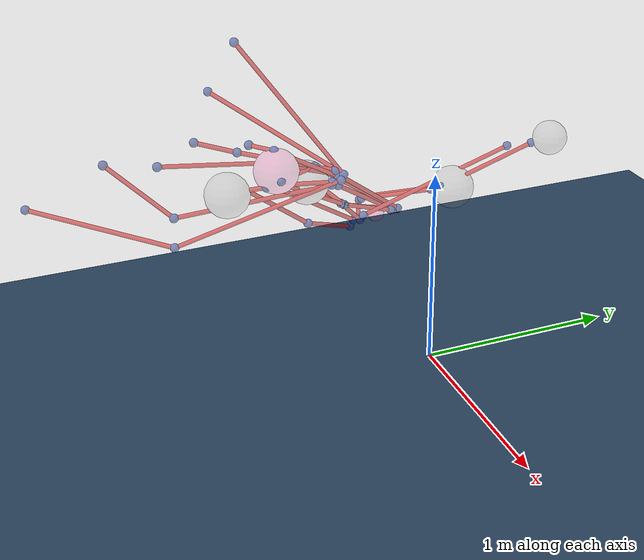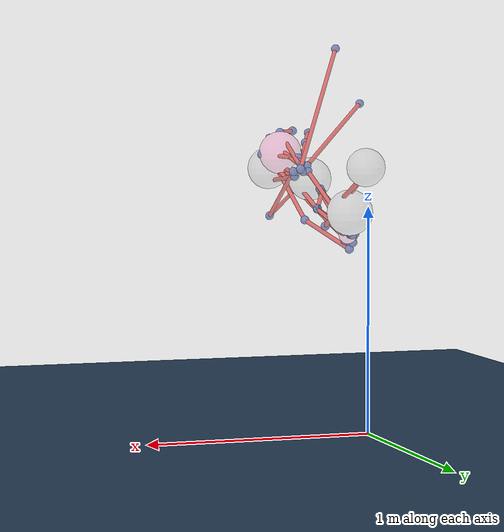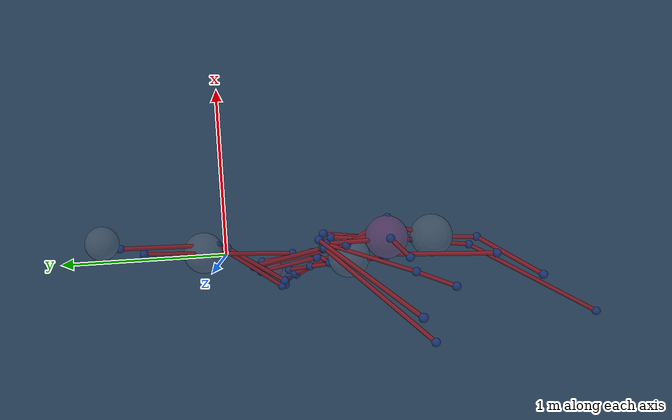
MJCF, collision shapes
<mujoco model="mouse">
  <compiler angle="radian">
    <lengthrange mode="muscle"/>
  </compiler>
  <default>
  <joint limited="true" damping="0.5" armature="0.5" stiffness="1"></joint>
  <site size="0.001"></site>
  <tendon width="0.005" rgba=".95 .3 .3 1" limited="false"></tendon>
  </default>
  <option timestep="0.002"/>
  <size njmax="1000" nconmax="400" nkey="1" nuser_jnt="1"/>
  <visual>
    <scale framelength="0.5" framewidth="0.01"/>
  </visual>
  <asset>
    <material name="target" rgba="0.59999999999999998 0.29999999999999999 0.29999999999999999 0.29999999999999999"/>
    <texture name="grid_texture" type="2d" builtin="checker" rgb1="0.10000000000000001 0.20000000000000001 0.29999999999999999" rgb2="0.20000000000000001 0.29999999999999999 0.40000000000000002" mark="edge" markrgb="0.20000000000000001 0.29999999999999999 0.40000000000000002" width="300" height="300"/>
    <material name="grid_material" texture="grid_texture" texrepeat="1 1" texuniform="true" reflectance="0.20000000000000001"/>
    <mesh file="/root/vast/eric/vnl-ray/vnl_ray/mouse_forelimb/assets_mousereach/mesh/Bones_Scapula.stl" scale="100 100 100"/>
		<mesh file="/root/vast/eric/vnl-ray/vnl_ray/mouse_forelimb/assets_mousereach/mesh/Bone_Segmentation_Humerus.stl" scale="100 100 100"/>
		<mesh file="/root/vast/eric/vnl-ray/vnl_ray/mouse_forelimb/assets_mousereach/mesh/Bone_Segmentation_Segment_8.stl" scale="100 100 100"/>
		<mesh file="/root/vast/eric/vnl-ray/vnl_ray/mouse_forelimb/assets_mousereach/mesh/Bone_Segments_Hand.stl" scale="100 100 100"/>
		<mesh file="/root/vast/eric/vnl-ray/vnl_ray/mouse_forelimb/assets_mousereach/mesh/Bone_Segments_Radius.stl" scale="100 100 100"/>
		<mesh file="/root/vast/eric/vnl-ray/vnl_ray/mouse_forelimb/assets_mousereach/mesh/Bone_Segments_Ulna.stl" scale="100 100 100"/>
  </asset>
  <worldbody>
    <light name="light" pos="0 0 10"/>
    <camera name="fixed" mode="fixed" pos=".2 -.2 5"/>
    <camera name="fixed2" mode="fixed" pos=".2 -.2 5"/>
    <geom name="target" type="sphere" size="0.0030000000000000001" material="target" pos="0.002 0.017000000000000001 0.0050000000000000001"/>
    <geom name="floor" type="plane" contype="0" conaffinity="1" size="3 3 0.20000000000000001" material="grid_material" pos="0 0 -0.02"/>
    <body name="ground" euler="1.5708 3.1415999999999999 1.5708">
      <geom name="unnamed_geom_2" type="ellipsoid" size="0.00050000000000000001" rgba="1 0 0 0.10000000000000001" fromto="0 0 0 0.01 0 0"/>
      <geom name="unnamed_geom_3" type="ellipsoid" size="0.00050000000000000001" rgba="0 1 0 0.10000000000000001" fromto="0 0 0 0 0.01 0"/>
      <geom name="unnamed_geom_4" type="ellipsoid" size="0.00050000000000000001" rgba="0 0 1 0.10000000000000001" fromto="0 0 0 0 0 0.01"/>
      <body name="clavicle" pos="-0.012 0 0.0080000000000000002" euler="0 1.5707 0">
        <joint name="ground_clavicle" pos="0 0 0" axis="0 0 1" limited="true" range="-0.001 0"/>
        <geom name="unnamed_geom_5" type="mesh" contype="0" conaffinity="0" pos="0 0 0" mesh="Bone_Segmentation_Segment_8"/>
        <inertial pos="0 0 0" mass="3.4999999999999997e-05" diaginertia="3.9999999999999998e-06 3.9999999999999998e-06 3.9999999999999998e-06"/>
        <site name="Pec_Midpoint_01" rgba="0.10000000000000001 0.20000000000000001 0.59999999999999998 0.5" size="0.02" pos="0.96199999999999997 -0.023800000000000002 1.2724"/>
        <site name="Pec_Origin_Clav" rgba="0.10000000000000001 0.20000000000000001 0.59999999999999998 0.5" size="0.02" pos="1.1328 -0.095799999999999996 1.3170999999999999"/>
        <site name="Deltoid_A-P2" rgba="0.10000000000000001 0.20000000000000001 0.59999999999999998 0.5" size="0.02" pos="0.8468 0.1394 1.3248"/>
        <site name="Deltoid_A_Origin" rgba="0.10000000000000001 0.20000000000000001 0.59999999999999998 0.5" size="0.02" pos="0.92999999999999994 0.050000000000000003 1.3299999999999998"/>
      </body>
      <body name="scapula" pos="-0.012 0 0.0080000000000000002" euler="0 1.5707 0">
        <joint name="ground_scapula" pos="0 0 0" axis="0 1 0" limited="true" range="-9.9999999999999995e-07 0"/>
        <geom name="unnamed_geom_6" type="mesh" contype="0" conaffinity="0" pos="0 0 0" mesh="Bones_Scapula"/>
        <inertial pos="0.0106 0.0012999999999999999 0.0115" mass="0.00029999999999999997" diaginertia="0.0030000000000000001 0.0030000000000000001 0.0030000000000000001"/>
        <site name="interial_center_scapula" rgba="0.59999999999999998 0.59999999999999998 0.59999999999999998 0.10000000000000001" size="0.10000000000000001" pos="1.0600000000000001 0.13 1.1499999999999999"/>
        <site name="Biceps_Long_Head-P3" rgba="0.10000000000000001 0.20000000000000001 0.59999999999999998 0.5" size="0.02" pos="0.849576 0.228906 1.2213019999999999"/>
        <site name="Triceps_Long_Head_Origin" rgba="0.10000000000000001 0.20000000000000001 0.59999999999999998 0.5" size="0.02" pos="0.97603800000000007 0.11741156999999999 1.1576519999999999"/>
        <site name="Deltoid_M_Origin" rgba="0.10000000000000001 0.20000000000000001 0.59999999999999998 0.5" size="0.02" pos="0.86929380000000012 0.1175186431 1.1578823999999999"/>
        <site name="Subscapularis_SuperiorHead_Origin" rgba="0.10000000000000001 0.20000000000000001 0.59999999999999998 0.5" size="0.02" pos="1.3300000600000002 0.039999899999999998 1.2899997000000001"/>
        <site name="Infraspinatus_P1" rgba="0.10000000000000001 0.20000000000000001 0.59999999999999998 0.5" size="0.02" pos="0.89999986812472343 0.18000002019107342 1.1800001375377178"/>
        <site name="Infraspinatus_Origin" rgba="0.10000000000000001 0.20000000000000001 0.59999999999999998 0.5" size="0.02" pos="1.0599999688565731 0.13000000035390258 1.1599999852478504"/>
        <site name="Latissimus_Dorsi-P1" rgba="0.10000000000000001 0.20000000000000001 0.59999999999999998 0.5" size="0.02" pos="1.5354085180824844 -0.071106804682717503 1.2869914043387327"/>
        <site name="Latissimus_Dorsi-P2" rgba="0.10000000000000001 0.20000000000000001 0.59999999999999998 0.5" size="0.02" pos="1.2904155305964331 0.10275014401610262 1.0721486942517477"/>
        <site name="Latissimus_Dorsi_Caudal1-P2" rgba="0.10000000000000001 0.20000000000000001 0.59999999999999998 0.5" size="0.02" pos="1.2865897215296855 0.053475836869008087 0.90672458236239295"/>
        <site name="Latissimus_Dorsi_Caudal-P3" rgba="0.10000000000000001 0.20000000000000001 0.59999999999999998 0.5" size="0.02" pos="1.8541318450470012 -0.29601516155816587 1.0381887523270792"/>
        <site name="Pectoralis_Major-P1" rgba="0.10000000000000001 0.20000000000000001 0.59999999999999998 0.5" size="0.02" pos="0.91109931649912268 -0.15884792725767341 1.7209259523298364"/>
        <site name="Pectoralis_Major_Posterior-P1" rgba="0.10000000000000001 0.20000000000000001 0.59999999999999998 0.5" size="0.02" pos="0.99874523886768274 -0.31334550146689505 1.459614155824466"/>
        <body name="humerus" pos="0 0 0" euler="0 0 0">
          <joint name="sh_elv_angle" pos="0.83999999999999997 0.13999999999999999 1.23" axis="0.001 0.001 0.5" limited="true" range="-0.80000000000000004 1.3" damping="0.5"/>
          <joint name="sh_extension_angle" pos="0.83999999999999997 0.13999999999999999 1.23" axis="0.001 0.5 0.001" limited="true" range="-0.59999999999999998 2.5" damping="0.5"/>
          <joint name="sh_rotation_angle" pos="0.83999999999999997 0.13999999999999999 1.23" axis="0.5 0.001 0.001" limited="true" range="-2 -1" ref="-2" damping="0.5"/>
          <site name="shoulder_joint_viz_large" rgba="1 0.20000000000000001 0.59999999999999998 0.20000000000000001" size="0.10000000000000001" pos="0.83999999999999997 0.13999999999999999 1.23"/>
          <site name="shoulder_joint_viz_small" rgba="1 0.20000000000000001 0.59999999999999998 0.59999999999999998" size="0.050000000000000003" pos="0.83999999999999997 0.13999999999999999 1.23"/>
          <inertial pos="0.0067000000000000002 0.00050000000000000001 0.01111" mass="0.00012579999999999999" diaginertia="3.0000000000000001e-05 3.0000000000000001e-05 3.0000000000000001e-05"/>
          <site name="interial_center_humerus" rgba="0.59999999999999998 0.59999999999999998 0.59999999999999998 0.10000000000000001" size="0.10000000000000001" pos="0.67000000000000004 0.050000000000000003 1.111"/>
          <geom name="unnamed_geom_7" type="mesh" contype="0" conaffinity="0" pos="0 0 0" mesh="Bone_Segmentation_Humerus"/>
          <site name="Pec_Insertion" rgba="0.10000000000000001 0.20000000000000001 0.59999999999999998 0.5" size="0.02" pos="0.56172713647642503 0.1217306443744107 1.1801347380847518"/>
          <site name="Biceps_Short_Head-P2" rgba="0.10000000000000001 0.20000000000000001 0.59999999999999998 0.5" size="0.02" pos="0.54574451884430442 0.10026753845241115 1.1513268213634631"/>
          <site name="Biceps_Short_Head-P3" rgba="0.10000000000000001 0.20000000000000001 0.59999999999999998 0.5" size="0.02" pos="0.85430913379060525 0.17365774677492346 1.275593949959777"/>
          <site name="Biceps_Short_Head-P4" rgba="0.10000000000000001 0.20000000000000001 0.59999999999999998 0.5" size="0.02" pos="0.91237900169656438 0.14539673238508494 1.2237457904057045"/>
          <site name="Biceps_Long_Head-P2" rgba="0.10000000000000001 0.20000000000000001 0.59999999999999998 0.5" size="0.02" pos="0.6544022925768731 0.11131667877239196 1.2102954121479437"/>
          <site name="Deltoid_A_Insertion" rgba="0.10000000000000001 0.20000000000000001 0.59999999999999998 0.5" size="0.02" pos="0.5499999038875103 0.12000000569969416 1.1500000022351742"/>
          <site name="Triceps_Short_Head_Origin" rgba="0.10000000000000001 0.20000000000000001 0.59999999999999998 0.5" size="0.02" pos="0.84740432167386293 0.16215078770896688 1.162284825956432"/>
          <site name="Triceps_Long_Head-P2" rgba="0.10000000000000001 0.20000000000000001 0.59999999999999998 0.5" size="0.02" pos="0.67608564133871296 0.071579430721963003 0.9198208841793537"/>
          <site name="MaybeBrachialis_InnerHead-P2" rgba="0.10000000000000001 0.20000000000000001 0.59999999999999998 0.5" size="0.02" pos="0.50000012852250997 0.0699999975040555 0.98000010475516319"/>
          <site name="MaybeBrachialis_InnerHead-P3" rgba="0.10000000000000001 0.20000000000000001 0.59999999999999998 0.5" size="0.02" pos="0.58000041171908379 0.020000049902600001 1.0500005446374416"/>
          <site name="MaybeBrachialis_InnerHead-P4" rgba="0.10000000000000001 0.20000000000000001 0.59999999999999998 0.5" size="0.02" pos="0.83177142660227998 0.045153958661048321 1.2020553165621599"/>
          <site name="MaybeBrachialis_OuterrHead-P2" rgba="0.10000000000000001 0.20000000000000001 0.59999999999999998 0.5" size="0.02" pos="0.4999999888241291 0.0699999975040555 0.98000001162290573"/>
          <site name="MaybeBrachialis_OuterrHead-P3" rgba="0.10000000000000001 0.20000000000000001 0.59999999999999998 0.5" size="0.02" pos="0.82377977499531463 0.1392518913278212 1.1701324054897"/>
          <site name="Anconeus_Origin" rgba="0.10000000000000001 0.20000000000000001 0.59999999999999998 0.5" size="0.02" pos="0.51999995484948158 0.050000002374872565 1.0699999518692493"/>
          <site name="Deltoid_M_Insertion" rgba="0.10000000000000001 0.20000000000000001 0.59999999999999998 0.5" size="0.02" pos="0.58772130318881233 0.14908194415200801 1.1389911914674269"/>
          <site name="Short_Anconeus_Origin" rgba="0.10000000000000001 0.20000000000000001 0.59999999999999998 0.5" size="0.02" pos="0.36000004038214684 -0.089999998454004526 0.90999985113739967"/>
          <site name="Subscapularis_SuperiorHead_Insertion" rgba="0.10000000000000001 0.20000000000000001 0.59999999999999998 0.5" size="0.02" pos="0.81585858381196807 0.06186340862514017 1.2345906015916785"/>
          <site name="Infraspinatus_Insertion" rgba="0.10000000000000001 0.20000000000000001 0.59999999999999998 0.5" size="0.02" pos="0.82999998703598976 0.16000003088265657 1.1900001205503941"/>
          <site name="PronatorTeres-P2" rgba="0.10000000000000001 0.20000000000000001 0.59999999999999998 0.5" size="0.02" pos="0.35691947698062859 -0.066973217558682907 0.92697723943589749"/>
          <site name="FlexorCarpiRadialis-P3" rgba="0.10000000000000001 0.20000000000000001 0.59999999999999998 0.5" size="0.02" pos="0.3424910947835591 -0.092751065178608982 0.9228797150415774"/>
          <site name="Brachioradialis-P2" rgba="0.10000000000000001 0.20000000000000001 0.59999999999999998 0.5" size="0.02" pos="0.40301408561327356 0.064780518353433444 0.90598902737887288"/>
          <site name="Triceps_Lateral_Head_Origin" rgba="0.10000000000000001 0.20000000000000001 0.59999999999999998 0.5" size="0.02" pos="0.65206629844889508 0.024985577586227232 1.0981274063174209"/>
          <site name="Triceps_Lateral_Head-P2" rgba="0.10000000000000001 0.20000000000000001 0.59999999999999998 0.5" size="0.02" pos="0.48773966363577731 -0.0020990597736210165 0.95378741754235197"/>
          <site name="Latissimus_Dorsi_Rostral-P3" rgba="0.10000000000000001 0.20000000000000001 0.59999999999999998 0.5" size="0.02" pos="0.5898000206798315 0.14979999978095293 1.1264000087976456"/>
          <site name="Latissimus_Dorsi_Caudal1-P1" rgba="0.10000000000000001 0.20000000000000001 0.59999999999999998 0.5" size="0.02" pos="0.55302735648831569 0.16819697092966762 1.1498725520216171"/>
          <site name="Pectoralis_Major-P2" rgba="0.10000000000000001 0.20000000000000001 0.59999999999999998 0.5" size="0.02" pos="0.53022676397607293 0.14110375999547425 1.1624181595743515"/>
          <site name="Pectoralis_Major_Posterior-P2" rgba="0.10000000000000001 0.20000000000000001 0.59999999999999998 0.5" size="0.02" pos="0.55313255098350878 0.10215392755078267 1.1759959498415538"/>
          <body name="ulna" pos="0.0001 0 0.00020000000000000001">
            <geom name="unnamed_geom_8" type="mesh" contype="0" conaffinity="0" pos="0 0 0" mesh="Bone_Segments_Ulna"/>
            <inertial pos="-0.00029999999999999997 0.001 0.0099000000000000008" mass="0.00071000000000000002" diaginertia="7.0999999999999998e-06 7.0999999999999998e-06 7.0999999999999998e-06"/>
            <site name="interial_center_ulna" rgba="0.59999999999999998 0.59999999999999998 0.59999999999999998 0.10000000000000001" size="0.10000000000000001" pos="-0.029999999999999999 0.10000000000000001 0.9900000000000001"/>
            <joint name="elbow" pos="0.31 -0.01 0.86999999999999988" axis="0.089999999999999997 0.34000000000000002 -0.51822257999999999" limited="true" range="-0.69999999999999996 1.55" damping="0.5"/>
            <site name="elbow_joint_viz_large" rgba="1 0.20000000000000001 0.59999999999999998 0.20000000000000001" size="0.040000000000000001" pos="0.31 -0.01 0.86999999999999988"/>
            <site name="elbow_joint_viz_small" rgba="1 0.20000000000000001 0.59999999999999998 0.59999999999999998" size="0.02" pos="0.31 -0.01 0.86999999999999988"/>
            <site name="Biceps_Short_Head_Insertion" rgba="0.10000000000000001 0.20000000000000001 0.59999999999999998 0.5" size="0.02" pos="0.20618210163849582 0.0097561118761496993 0.88274838632424002"/>
            <site name="Biceps_Long_Head-P1" rgba="0.10000000000000001 0.20000000000000001 0.59999999999999998 0.5" size="0.02" pos="0.20579110363015701 0.0048790457865474646 0.87739699295307716"/>
            <site name="Triceps_Short_Head_Insertion" rgba="0.10000000000000001 0.20000000000000001 0.59999999999999998 0.5" size="0.02" pos="0.40794520364881559 -0.044752834513670001 0.83486668495079996"/>
            <site name="Triceps_Long_Head_Insertion" rgba="0.10000000000000001 0.20000000000000001 0.59999999999999998 0.5" size="0.02" pos="0.41949787941631389 -0.057040978634273279 0.79775141099199998"/>
            <site name="MaybeBrachialis_InnerHead-P1" rgba="0.10000000000000001 0.20000000000000001 0.59999999999999998 0.5" size="0.02" pos="0.22711976820488228 0.0058667960025300002 0.87904077473989894"/>
            <site name="Anconeus-Insertion" rgba="0.10000000000000001 0.20000000000000001 0.59999999999999998 0.5" size="0.02" pos="0.23999996483325958 -0.01999999803956598 0.8800002746284008"/>
            <site name="Short_Anconeus_Insertion" rgba="0.10000000000000001 0.20000000000000001 0.59999999999999998 0.5" size="0.02" pos="0.38000000640749931 -0.059999991208314896 0.82999998703598976"/>
            <body name="radius" pos="0 0 0">
              <geom name="unnamed_geom_9" type="mesh" contype="0" conaffinity="0" pos="0 0 0" mesh="Bone_Segments_Radius"/>
              <inertial pos="-0.00029999999999999997 0.0014 0.0103" mass="0.00071000000000000002" diaginertia="5.3000000000000001e-06 5.3000000000000001e-06 5.3000000000000001e-06"/>
              <site name="interial_center_radius" rgba="0.59999999999999998 0.59999999999999998 0.59999999999999998 0.10000000000000001" size="0.080000000000000002" pos="-0.029999999999999999 0.10000000000000001 0.9900000000000001"/>
              <site name="MaybeBrachialis_OuterrHead-P1" rgba="0.10000000000000001 0.20000000000000001 0.59999999999999998 0.5" size="0.02" pos="0.24999999439999998 0.030000001424924001 0.88999997824430466"/>
              <site name="PronatorTeres-P1" rgba="0.10000000000000001 0.20000000000000001 0.59999999999999998 0.5" size="0.02" pos="0.087550107567999996 0.11853275020137226 1.0050151513765162"/>
              <site name="FlexorCarpiRadialis-P2" rgba="0.10000000000000001 0.20000000000000001 0.59999999999999998 0.5" size="0.02" pos="0.039500295990069212 0.137263 1.0208441611422561"/>
              <site name="Brachioradialis-P1" rgba="0.10000000000000001 0.20000000000000001 0.59999999999999998 0.5" size="0.02" pos="-0.29278056764625027 0.126620712543319 1.1637220667654609"/>
              <site name="Triceps_Lateral_Head_Insertion" rgba="0.10000000000000001 0.20000000000000001 0.59999999999999998 0.5" size="0.02" pos="0.38194762500000001 -0.023364176769999998 0.83994770629340487"/>
              <body name="hand" pos="0 0 0">
                <geom name="unnamed_geom_10" type="mesh" contype="0" conaffinity="0" pos="0 0 0" mesh="Bone_Segments_Hand"/>
                <site name="FlexorCarpiRadialis-P1" rgba="0.10000000000000001 0.20000000000000001 0.59999999999999998 0.5" size="0.02" pos="-0.40155582771694981 0.15821272299320829 1.1737779242925817"/>
                <geom name="finger_tip" type="sphere" size="0.001" material="target" pos="-0.0071999999999999998 0.0019 0.012999999999999999"/>
                <inertial pos="-0.0047999999999999996 0.0019 0.012" mass="0.00071000000000000002" diaginertia="6.9999999999999997e-07 6.9999999999999997e-07 6.9999999999999997e-07"/>
                <site name="interial_center_hand" rgba="0.59999999999999998 0.59999999999999998 0.59999999999999998 0.10000000000000001" size="0.080000000000000002" pos="-0.47999999999999998 0.19 1.2"/>
              </body>
            </body>
          </body>
        </body>
      </body>
    </body>
  </worldbody>
  <contact>
    <exclude name="exclude_2_body_0" body1="clavicle" body2="scapula"/>
  </contact>
  <tendon>
    <spatial name="Pectoralis_Clavicle_Head" width="0.01" rgba="0.90000000000000002 0 0 0.5" springlength="-1">
      <site site="Pec_Insertion"/>
      <site site="Pec_Midpoint_01"/>
      <site site="Pec_Origin_Clav"/>
    </spatial>
    <spatial name="Biceps_Long_Head" width="0.01" rgba="0.90000000000000002 0 0 0.5" springlength="-1">
      <site site="Biceps_Short_Head_Insertion"/>
      <site site="Biceps_Short_Head-P2"/>
      <site site="Biceps_Short_Head-P3"/>
      <site site="Biceps_Short_Head-P4"/>
    </spatial>
    <spatial name="Biceps_Short_Head" width="0.01" rgba="0.90000000000000002 0 0 0.5" springlength="-1">
      <site site="Biceps_Long_Head-P1"/>
      <site site="Biceps_Long_Head-P2"/>
      <site site="Biceps_Long_Head-P3"/>
    </spatial>
    <spatial name="Deltoid_Medial_CHK_MMTARM" width="0.01" rgba="0.90000000000000002 0 0 0.5" springlength="-1">
      <site site="Deltoid_A_Insertion"/>
      <site site="Deltoid_A-P2"/>
      <site site="Deltoid_A_Origin"/>
    </spatial>
    <spatial name="Triceps_Lat_Head" width="0.01" rgba="0.90000000000000002 0 0 0.5" springlength="-1">
      <site site="Triceps_Short_Head_Insertion"/>
      <site site="Triceps_Short_Head_Origin"/>
    </spatial>
    <spatial name="Triceps_Long_Head" width="0.01" rgba="0.90000000000000002 0 0 0.5" springlength="-1">
      <site site="Triceps_Long_Head_Insertion"/>
      <site site="Triceps_Long_Head-P2"/>
      <site site="Triceps_Long_Head_Origin"/>
    </spatial>
    <spatial name="Brachialis_Proximal_Head" width="0.01" rgba="0.90000000000000002 0 0 0.5" springlength="-1">
      <site site="MaybeBrachialis_InnerHead-P1"/>
      <site site="MaybeBrachialis_InnerHead-P2"/>
      <site site="MaybeBrachialis_InnerHead-P3"/>
      <site site="MaybeBrachialis_InnerHead-P4"/>
    </spatial>
    <spatial name="Brachialis_Distal_Head" width="0.01" rgba="0.90000000000000002 0 0 0.5" springlength="-1">
      <site site="MaybeBrachialis_OuterrHead-P1"/>
      <site site="MaybeBrachialis_OuterrHead-P2"/>
      <site site="MaybeBrachialis_OuterrHead-P3"/>
    </spatial>
    <spatial name="Anconeus" width="0.01" rgba="0.90000000000000002 0 0 0.5" springlength="-1">
      <site site="Anconeus_Origin"/>
      <site site="Anconeus-Insertion"/>
    </spatial>
    <spatial name="Deltoid_Posterior" width="0.01" rgba="0.90000000000000002 0 0 0.5" springlength="-1">
      <site site="Deltoid_M_Insertion"/>
      <site site="Deltoid_M_Origin"/>
    </spatial>
    <spatial name="Short_Anconeus" width="0.01" rgba="0.90000000000000002 0 0 0.5" springlength="-1">
      <site site="Short_Anconeus_Insertion"/>
      <site site="Short_Anconeus_Origin"/>
    </spatial>
    <spatial name="Subscapularis_SuperiorHead" width="0.01" rgba="0.90000000000000002 0 0 0.5" springlength="-1">
      <site site="Subscapularis_SuperiorHead_Insertion"/>
      <site site="Subscapularis_SuperiorHead_Origin"/>
    </spatial>
    <spatial name="Infraspinatus" width="0.01" rgba="0.90000000000000002 0 0 0.5" springlength="-1">
      <site site="Infraspinatus_Insertion"/>
      <site site="Infraspinatus_P1"/>
      <site site="Infraspinatus_Origin"/>
    </spatial>
    <spatial name="PronatorTeres" width="0.01" rgba="0.90000000000000002 0 0 0.5" springlength="-1">
      <site site="PronatorTeres-P1"/>
      <site site="PronatorTeres-P2"/>
    </spatial>
    <spatial name="FlexorCarpiRadialis" width="0.01" rgba="0.90000000000000002 0 0 0.5" springlength="-1">
      <site site="FlexorCarpiRadialis-P1"/>
      <site site="FlexorCarpiRadialis-P2"/>
      <site site="FlexorCarpiRadialis-P3"/>
    </spatial>
    <spatial name="Brachioradialis" width="0.01" rgba="0.90000000000000002 0 0 0.5" springlength="-1">
      <site site="Brachioradialis-P1"/>
      <site site="Brachioradialis-P2"/>
    </spatial>
    <spatial name="Triceps_Medial_Head" width="0.01" rgba="0.90000000000000002 0 0 0.5" springlength="-1">
      <site site="Triceps_Lateral_Head_Origin"/>
      <site site="Triceps_Lateral_Head-P2"/>
      <site site="Triceps_Lateral_Head_Insertion"/>
    </spatial>
    <spatial name="Latissimus_Dorsi_Rostral" width="0.01" rgba="0.90000000000000002 0 0 0.5" springlength="-1">
      <site site="Latissimus_Dorsi-P1"/>
      <site site="Latissimus_Dorsi-P2"/>
      <site site="Latissimus_Dorsi_Rostral-P3"/>
    </spatial>
    <spatial name="Latissimus_Dorsi_Caudal" width="0.01" rgba="0.90000000000000002 0 0 0.5" springlength="-1">
      <site site="Latissimus_Dorsi_Caudal1-P1"/>
      <site site="Latissimus_Dorsi_Caudal1-P2"/>
      <site site="Latissimus_Dorsi_Caudal-P3"/>
    </spatial>
    <spatial name="Pectoralis_Major_Anterior" width="0.01" rgba="0.90000000000000002 0 0 0.5" springlength="-1">
      <site site="Pectoralis_Major-P1"/>
      <site site="Pectoralis_Major-P2"/>
    </spatial>
    <spatial name="Pectoralis_Major_Posterior" width="0.01" rgba="0.90000000000000002 0 0 0.5" springlength="-1">
      <site site="Pectoralis_Major_Posterior-P1"/>
      <site site="Pectoralis_Major_Posterior-P2"/>
    </spatial>
  </tendon>
  <actuator>
    <muscle name="Pectoralis_Clavicle_Head_act" lengthrange=".01 1" tendon="Pectoralis_Clavicle_Head" range="0 1" force="100" fpmax=".001"/>
    <muscle name="Biceps_Long_Head_act" lengthrange=".01 1.2" tendon="Biceps_Long_Head" range="0 1" force="100" fpmax=".001"/>
    <muscle name="Biceps_Short_Head_act" lengthrange=".01 1.2" tendon="Biceps_Short_Head" range="0 1" force="100" fpmax=".001"/>
    <muscle name="Deltoid_Medial_CHK_MMTARM_act" lengthrange=".01 1" tendon="Deltoid_Medial_CHK_MMTARM" range="0 1" force="100" fpmax=".001"/>
    <muscle name="Triceps_Lat_Head_act" lengthrange=".01 1" tendon="Triceps_Lat_Head" range="0 1" force="100" fpmax=".001"/>
    <muscle name="Triceps_Long_Head_act" lengthrange=".01 1" tendon="Triceps_Long_Head" range="0 1" force="100" fpmax=".001"/>
    <muscle name="Brachialis_Proximal_Head_act" lengthrange=".01 1" tendon="Brachialis_Proximal_Head" range="0 1" force="100" fpmax=".001"/>
    <muscle name="Brachialis_Distal_Head_act" lengthrange=".01 1" tendon="Brachialis_Distal_Head" range="0 1" force="100" fpmax=".001"/>
    <muscle name="Anconeus_act" lengthrange=".01 .5" tendon="Anconeus" range="0 1" force="100" fpmax=".001"/>
    <muscle name="Deltoid_Posterior_act" lengthrange=".01 .5" tendon="Deltoid_Posterior" range="0 1" force="100" fpmax=".001"/>
    <muscle name="Short_Anconeus_act" lengthrange=".01 1" tendon="Short_Anconeus" range="0 1" force="100" fpmax=".001"/>
    <muscle name="Subscapularis_SuperiorHead_act" lengthrange=".01 1" tendon="Subscapularis_SuperiorHead" range="0 1" force="100" fpmax=".001"/>
    <muscle name="Infraspinatus_act" lengthrange=".01 1" tendon="Infraspinatus" range="0 1" force="100" fpmax=".001"/>
    <muscle name="PronatorTeres_act" lengthrange=".01 .5" tendon="PronatorTeres" range="0 1" force="100" fpmax=".001"/>
    <muscle name="FlexorCarpiRadialis_act" lengthrange=".01 1" tendon="FlexorCarpiRadialis" range="0 1" force="100" fpmax=".001"/>
    <muscle name="Brachioradialis_act" lengthrange=".01 1" tendon="Brachioradialis" range="0 1" force="100" fpmax=".001"/>
    <muscle name="Triceps_Medial_Head_act" lengthrange=".01 .5" tendon="Triceps_Medial_Head" range="0 1" force="100" fpmax=".001"/>
    <muscle name="Latissimus_Dorsi_Rostral_act" lengthrange=".01 1" tendon="Latissimus_Dorsi_Rostral" range="0 1" force="100" fpmax=".001"/>
    <muscle name="Latissimus_Dorsi_Caudal_act" lengthrange=".01 2" tendon="Latissimus_Dorsi_Caudal" range="0 1" force="100" fpmax=".001"/>
    <muscle name="Pectoralis_Major_Anterior_act" lengthrange=".01 1" tendon="Pectoralis_Major_Anterior" range="0 1" force="100" fpmax=".001"/>
    <muscle name="Pectoralis_Major_Posterior_act" lengthrange=".01 1" tendon="Pectoralis_Major_Posterior" range="0 1" force="100" fpmax=".001"/>
  </actuator>
</mujoco>
